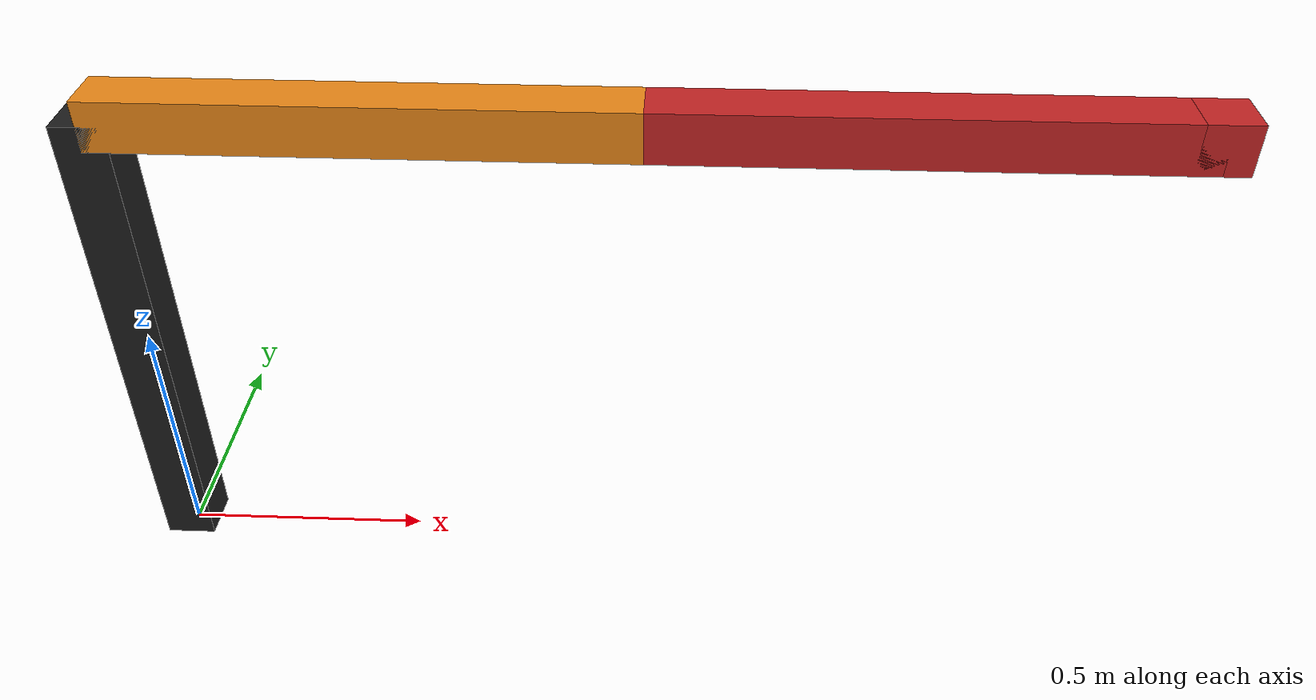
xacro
<?xml version="1.0"?>
<robot name="scara" xmlns:xacro="http://www.ros.org/wiki/xacro">

  <!-- Constants for robot dimensions -->
  <xacro:property name="PI" value="3.1415926535897931"/>
  <xacro:property name="mass" value="1" /> <!-- arbitrary value for mass -->
  <xacro:property name="width" value="0.1" /> <!-- Square dimensions (widthxwidth) of beams -->
  <xacro:property name="height" value="1" /> <!-- Link height -->
  <xacro:property name="mass_pole" value="0.1" /> <!-- arbitrary value for mass -->
  <xacro:property name="width_pole" value="0.1" /> <!-- Square dimensions (widthxwidth) of beams -->
  <xacro:property name="height_pole" value="0.1" /> <!-- Link height -->
  <xacro:property name="prismatic_limit" value="1" /> <!-- Limit for prismatic joint -->
  <xacro:property name="damping_coeff" value="0.7" /> <!-- Damping coefficient for joints -->

  <!-- Import all Gazebo-customization elements, including Gazebo colors -->
  <xacro:include filename="$(find rbe500_project)/urdf/scara.gazebo" />

  <!-- Used for fixing robot to Gazebo 'base' -->

  <link name="world"/>

  <link name="link1">
    <collision>
      <geometry>
        <box size="${width} ${width} ${height}"/>
      </geometry>
      <origin rpy="0 0 ${-PI}" xyz="0 0 ${height/2}"/>
    </collision>

    <visual>
      <geometry>
        <box size="${width} ${width} ${height}"/>
      </geometry>
      <origin rpy="0 0 ${-PI}" xyz="0 0 ${height/2}"/>
    </visual>

    <inertial>
      <origin xyz="0 0 ${-PI}" rpy="0 0 ${height/2}"/>
      <mass value="${mass}"/>
      <inertia
	  ixx="${mass / 12.0 * (width*width + height*height)}" ixy="0.0" ixz="0.0"
	  iyy="${mass / 12.0 * (height*height + width*width)}" iyz="0.0"
	  izz="${mass / 12.0 * (width*width + width*width)}"/>
    </inertial>
  </link>

  <joint name="theta1" type="revolute">
    <parent link="world"/>
    <child link="link1"/>
    <limit effort="1000.0" lower="${-PI}" upper="${PI}" velocity="0.5"/>
    <axis xyz="0 0 1"/>
    <origin xyz="0 0 0"/>
    <dynamics damping="${damping_coeff}"/>
  </joint>

  <link name="link2">
    <collision>
      <geometry>
        <box size="${width} ${width} ${height}"/>
      </geometry>
      <origin rpy="0 ${PI/2} 0" xyz="${height/2} 0 0"/>
    </collision>

    <visual>
      <geometry>
        <box size="${width} ${width} ${height}"/>
      </geometry>
      <material name="my_color">
        <color rgb="255 135 255" alpha="1.0"/>
      </material>
      <origin rpy="0 ${PI/2} 0" xyz="${height/2} 0 0"/>
    </visual>

    <inertial>
      <origin rpy="0 ${PI/2} 0" xyz="${height/2} 0 0"/>
      <mass value="${mass}"/>
      <inertia
	  ixx="${mass / 12.0 * (width*width + height*height)}" ixy="0.0" ixz="0.0"
	  iyy="${mass / 12.0 * (height*height + width*width)}" iyz="0.0"
	  izz="${mass / 12.0 * (width*width + width*width)}"/>
    </inertial>
  </link>

  <joint name="bend" type="fixed">
    <parent link="link1"/>
    <child link="link2"/>
    <origin xyz="0 0 ${height}"/>
  </joint>

  <link name="link3">
    <collision>
      <geometry>
        <box size="${width} ${width} ${height}"/>
      </geometry>
      <origin rpy="0 ${PI/2} 0" xyz="${height/2} 0 0"/>
    </collision>

    <visual>
      <geometry>
        <box size="${width} ${width} ${height}"/>
      </geometry>
      <origin rpy="0 ${PI/2} 0" xyz="${height/2} 0 0"/>
    </visual>

    <inertial>
      <origin rpy="0 ${PI/2} 0" xyz="${height/2} 0 0"/>
      <mass value="${mass}"/>
      <inertia
	  ixx="${mass / 12.0 * (width*width + height*height)}" ixy="0.0" ixz="0.0"
	  iyy="${mass / 12.0 * (height*height + width*width)}" iyz="0.0"
	  izz="${mass / 12.0 * (width*width + width*width)}"/>
    </inertial>
  </link>

  <joint name="theta2" type="revolute">
    <parent link="link2"/>
    <child link="link3"/>
    <limit effort="1000.0" lower="${-PI}" upper="${PI}" velocity="0.5"/>
    <axis xyz="0 0 1"/>
    <origin xyz="${height} 0 0"/>
    <dynamics damping="${damping_coeff}"/>
  </joint>

  <link name="gripper_pole">
    <collision>
      <geometry>
        <box size="${width_pole} ${width_pole} ${height_pole}"/>
      </geometry>
      <origin rpy="0 0 0 " xyz="0 0 0"/>
    </collision>

    <visual>
      <geometry>
        <box size="${width_pole} ${width_pole} ${height_pole}"/>
      </geometry>
      <origin rpy="0 0 0 " xyz="0 0 0"/>
    </visual>

    <inertial>
      <origin rpy="0 0 0 " xyz="0 0 0"/>
      <mass value="${mass_pole}"/>
      <inertia
	  ixx="${mass / 12.0 * (width_pole*width_pole + height_pole*height_pole)}" ixy="0.0" ixz="0.0"
	  iyy="${mass / 12.0 * (height_pole*height_pole + width_pole*width_pole)}" iyz="0.0"
	  izz="${mass / 12.0 * (width_pole*width_pole + width_pole*width_pole)}"/>
    </inertial>
  </link>

  <joint name="d3" type="prismatic">
    <parent link="link3"/>
    <child link="gripper_pole"/>
    <limit effort="1000.0" lower="${-prismatic_limit}" upper="${prismatic_limit}" velocity="0.5"/>
    <axis xyz="0 0 1"/>
    <origin rpy="${PI} 0 0" xyz="${height} 0 0"/>
    <dynamics damping="${damping_coeff}"/>
  </joint>

  <gazebo reference="theta1">
    <turnGravityOff>true</turnGravityOff>
  </gazebo>

  <gazebo reference="theta2">
    <turnGravityOff>true</turnGravityOff>
  </gazebo>

  <gazebo reference="gripper_pole">
    <turnGravityOff>true</turnGravityOff>
  </gazebo>

</robot>
